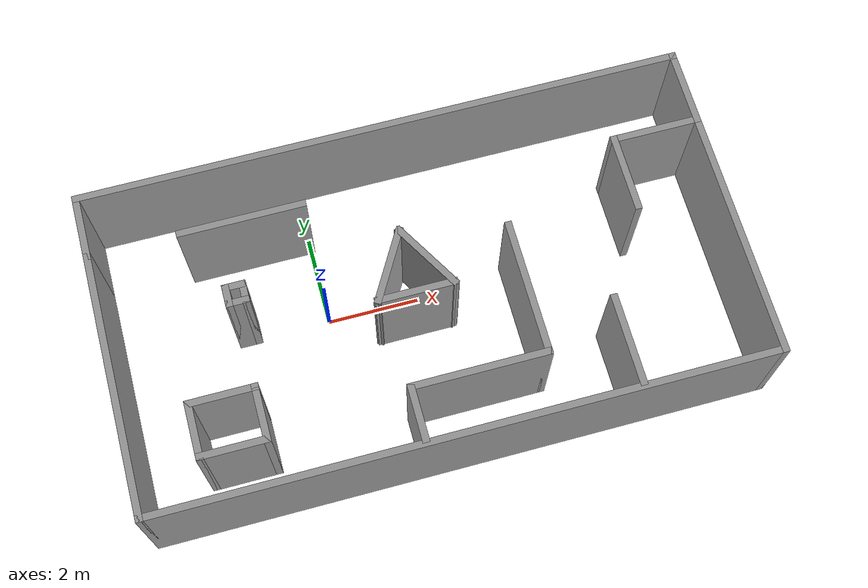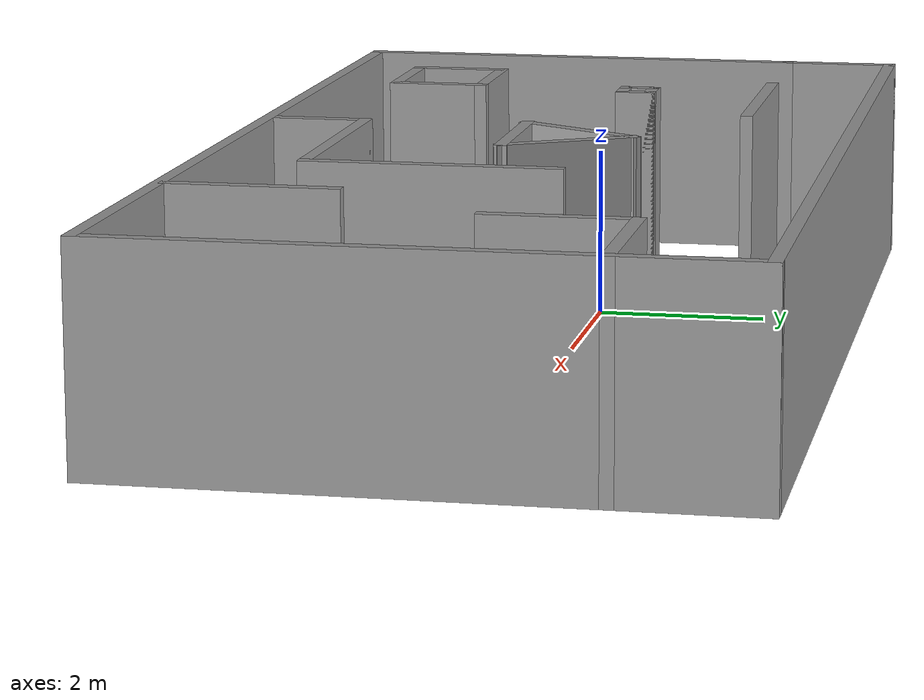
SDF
<?xml version='1.0'?>
<sdf version='1.7'>
  <model name='Untitled'>
    <pose>2.02003 -0.365294 0 0 -0 0</pose>
    <link name='Wall_10'>
      <collision name='Wall_10_Collision'>
        <geometry>
          <box>
            <size>13.25 0.15 2.5</size>
          </box>
        </geometry>
        <pose>0 0 1.25 0 -0 0</pose>
      </collision>
      <visual name='Wall_10_Visual'>
        <pose>0 0 1.25 0 -0 0</pose>
        <geometry>
          <box>
            <size>13.25 0.15 2.5</size>
          </box>
        </geometry>
        <material>
          <script>
            <uri>file://media/materials/scripts/gazebo.material</uri>
            <name>Gazebo/Grey</name>
          </script>
          <ambient>1 1 1 1</ambient>
        </material>
        <meta>
          <layer>0</layer>
        </meta>
      </visual>
      <pose>-0 3.475 0 0 -0 0</pose>
    </link>
    <link name='Wall_11'>
      <collision name='Wall_11_Collision'>
        <geometry>
          <box>
            <size>1.75 0.15 2.5</size>
          </box>
        </geometry>
        <pose>0 0 1.25 0 -0 0</pose>
      </collision>
      <visual name='Wall_11_Visual'>
        <pose>0 0 1.25 0 -0 0</pose>
        <geometry>
          <box>
            <size>1.75 0.15 2.5</size>
          </box>
        </geometry>
        <material>
          <script>
            <uri>file://media/materials/scripts/gazebo.material</uri>
            <name>Gazebo/Grey</name>
          </script>
          <ambient>1 1 1 1</ambient>
        </material>
        <meta>
          <layer>0</layer>
        </meta>
      </visual>
      <pose>6.55 2.675 0 0 -0 -1.5708</pose>
    </link>
    <link name='Wall_12'>
      <collision name='Wall_12_Collision'>
        <geometry>
          <box>
            <size>2 0.15 2.5</size>
          </box>
        </geometry>
        <pose>0 0 1.25 0 -0 0</pose>
      </collision>
      <visual name='Wall_12_Visual'>
        <pose>0 0 1.25 0 -0 0</pose>
        <geometry>
          <box>
            <size>2 0.15 2.5</size>
          </box>
        </geometry>
        <material>
          <script>
            <uri>file://media/materials/scripts/gazebo.material</uri>
            <name>Gazebo/Grey</name>
          </script>
          <ambient>1 1 1 1</ambient>
        </material>
        <meta>
          <layer>0</layer>
        </meta>
      </visual>
      <pose>5.625 1.875 0 0 -0 3.14159</pose>
    </link>
    <link name='Wall_13'>
      <collision name='Wall_13_Collision'>
        <geometry>
          <box>
            <size>1.75 0.15 2.5</size>
          </box>
        </geometry>
        <pose>0 0 1.25 0 -0 0</pose>
      </collision>
      <visual name='Wall_13_Visual'>
        <pose>0 0 1.25 0 -0 0</pose>
        <geometry>
          <box>
            <size>1.75 0.15 2.5</size>
          </box>
        </geometry>
        <material>
          <script>
            <uri>file://media/materials/scripts/gazebo.material</uri>
            <name>Gazebo/Grey</name>
          </script>
          <ambient>1 1 1 1</ambient>
        </material>
        <meta>
          <layer>0</layer>
        </meta>
      </visual>
      <pose>4.7 1.075 0 0 -0 -1.5708</pose>
    </link>
    <link name='Wall_15'>
      <collision name='Wall_15_Collision'>
        <geometry>
          <box>
            <size>1.75 0.15 2.5</size>
          </box>
        </geometry>
        <pose>0 0 1.25 0 -0 0</pose>
      </collision>
      <visual name='Wall_15_Visual'>
        <pose>0 0 1.25 0 -0 0</pose>
        <geometry>
          <box>
            <size>1.75 0.15 2.5</size>
          </box>
        </geometry>
        <material>
          <script>
            <uri>file://media/materials/scripts/gazebo.material</uri>
            <name>Gazebo/Grey</name>
          </script>
          <ambient>1 1 1 1</ambient>
        </material>
        <meta>
          <layer>0</layer>
        </meta>
      </visual>
      <pose>-0.630478 0.336992 0 0 -0 -2.0944</pose>
    </link>
    <link name='Wall_16'>
      <collision name='Wall_16_Collision'>
        <geometry>
          <box>
            <size>1.75 0.15 2.5</size>
          </box>
        </geometry>
        <pose>0 0 1.25 0 -0 0</pose>
      </collision>
      <visual name='Wall_16_Visual'>
        <pose>0 0 1.25 0 -0 0</pose>
        <geometry>
          <box>
            <size>1.75 0.15 2.5</size>
          </box>
        </geometry>
        <material>
          <script>
            <uri>file://media/materials/scripts/gazebo.material</uri>
            <name>Gazebo/Grey</name>
          </script>
          <ambient>1 1 1 1</ambient>
        </material>
        <meta>
          <layer>0</layer>
        </meta>
      </visual>
      <pose>-0.230478 -0.355829 0 0 -0 0</pose>
    </link>
    <link name='Wall_17'>
      <collision name='Wall_17_Collision'>
        <geometry>
          <box>
            <size>1.75 0.15 2.5</size>
          </box>
        </geometry>
        <pose>0 0 1.25 0 -0 0</pose>
      </collision>
      <visual name='Wall_17_Visual'>
        <pose>0 0 1.25 0 -0 0</pose>
        <geometry>
          <box>
            <size>1.75 0.15 2.5</size>
          </box>
        </geometry>
        <material>
          <script>
            <uri>file://media/materials/scripts/gazebo.material</uri>
            <name>Gazebo/Grey</name>
          </script>
          <ambient>1 1 1 1</ambient>
        </material>
        <meta>
          <layer>0</layer>
        </meta>
      </visual>
      <pose>0.169522 0.336992 0 0 -0 2.0944</pose>
    </link>
    <link name='Wall_19'>
      <collision name='Wall_19_Collision'>
        <geometry>
          <box>
            <size>1.25 0.15 2.5</size>
          </box>
        </geometry>
        <pose>0 0 1.25 0 -0 0</pose>
      </collision>
      <visual name='Wall_19_Visual'>
        <pose>0 0 1.25 0 -0 0</pose>
        <geometry>
          <box>
            <size>1.25 0.15 2.5</size>
          </box>
        </geometry>
        <material>
          <script>
            <uri>file://media/materials/scripts/gazebo.material</uri>
            <name>Gazebo/Grey</name>
          </script>
          <ambient>1 1 1 1</ambient>
        </material>
        <meta>
          <layer>0</layer>
        </meta>
      </visual>
      <pose>-5.18985 -2.03955 0 0 -0 -1.5708</pose>
    </link>
    <link name='Wall_20'>
      <collision name='Wall_20_Collision'>
        <geometry>
          <box>
            <size>1.5 0.15 2.5</size>
          </box>
        </geometry>
        <pose>0 0 1.25 0 -0 0</pose>
      </collision>
      <visual name='Wall_20_Visual'>
        <pose>0 0 1.25 0 -0 0</pose>
        <geometry>
          <box>
            <size>1.5 0.15 2.5</size>
          </box>
        </geometry>
        <material>
          <script>
            <uri>file://media/materials/scripts/gazebo.material</uri>
            <name>Gazebo/Grey</name>
          </script>
          <ambient>1 1 1 1</ambient>
        </material>
        <meta>
          <layer>0</layer>
        </meta>
      </visual>
      <pose>-4.51485 -2.58955 0 0 -0 0</pose>
    </link>
    <link name='Wall_21'>
      <collision name='Wall_21_Collision'>
        <geometry>
          <box>
            <size>1.25 0.15 2.5</size>
          </box>
        </geometry>
        <pose>0 0 1.25 0 -0 0</pose>
      </collision>
      <visual name='Wall_21_Visual'>
        <pose>0 0 1.25 0 -0 0</pose>
        <geometry>
          <box>
            <size>1.25 0.15 2.5</size>
          </box>
        </geometry>
        <material>
          <script>
            <uri>file://media/materials/scripts/gazebo.material</uri>
            <name>Gazebo/Grey</name>
          </script>
          <ambient>1 1 1 1</ambient>
        </material>
        <meta>
          <layer>0</layer>
        </meta>
      </visual>
      <pose>-3.83985 -2.03955 0 0 -0 1.5708</pose>
    </link>
    <link name='Wall_22'>
      <collision name='Wall_22_Collision'>
        <geometry>
          <box>
            <size>1.5 0.15 2.5</size>
          </box>
        </geometry>
        <pose>0 0 1.25 0 -0 0</pose>
      </collision>
      <visual name='Wall_22_Visual'>
        <pose>0 0 1.25 0 -0 0</pose>
        <geometry>
          <box>
            <size>1.5 0.15 2.5</size>
          </box>
        </geometry>
        <material>
          <script>
            <uri>file://media/materials/scripts/gazebo.material</uri>
            <name>Gazebo/Grey</name>
          </script>
          <ambient>1 1 1 1</ambient>
        </material>
        <meta>
          <layer>0</layer>
        </meta>
      </visual>
      <pose>-4.51485 -1.48955 0 0 -0 3.14159</pose>
    </link>
    <link name='Wall_24'>
      <collision name='Wall_24_Collision'>
        <geometry>
          <box>
            <size>2 0.15 2.5</size>
          </box>
        </geometry>
        <pose>0 0 1.25 0 -0 0</pose>
      </collision>
      <visual name='Wall_24_Visual'>
        <pose>0 0 1.25 0 -0 0</pose>
        <geometry>
          <box>
            <size>2 0.15 2.5</size>
          </box>
        </geometry>
        <material>
          <script>
            <uri>file://media/materials/scripts/gazebo.material</uri>
            <name>Gazebo/Grey</name>
          </script>
          <ambient>1 1 1 1</ambient>
        </material>
        <meta>
          <layer>0</layer>
        </meta>
      </visual>
      <pose>3.59816 -2.46895 0 0 -0 1.5708</pose>
    </link>
    <link name='Wall_26'>
      <collision name='Wall_26_Collision'>
        <geometry>
          <box>
            <size>2.75 0.15 2.5</size>
          </box>
        </geometry>
        <pose>0 0 1.25 0 -0 0</pose>
      </collision>
      <visual name='Wall_26_Visual'>
        <pose>0 0 1.25 0 -0 0</pose>
        <geometry>
          <box>
            <size>2.75 0.15 2.5</size>
          </box>
        </geometry>
        <material>
          <script>
            <uri>file://media/materials/scripts/gazebo.material</uri>
            <name>Gazebo/Grey</name>
          </script>
          <ambient>1 1 1 1</ambient>
        </material>
        <meta>
          <layer>0</layer>
        </meta>
      </visual>
      <pose>-3.31456 2.14071 0 0 -0 0</pose>
    </link>
    <link name='Wall_28'>
      <collision name='Wall_28_Collision'>
        <geometry>
          <box>
            <size>1.25 0.15 2.5</size>
          </box>
        </geometry>
        <pose>0 0 1.25 0 -0 0</pose>
      </collision>
      <visual name='Wall_28_Visual'>
        <pose>0 0 1.25 0 -0 0</pose>
        <geometry>
          <box>
            <size>1.25 0.15 2.5</size>
          </box>
        </geometry>
        <material>
          <script>
            <uri>file://media/materials/scripts/gazebo.material</uri>
            <name>Gazebo/Grey</name>
          </script>
          <ambient>1 1 1 1</ambient>
        </material>
        <meta>
          <layer>0</layer>
        </meta>
      </visual>
      <pose>-0.865278 -2.84395 0 0 -0 1.5708</pose>
    </link>
    <link name='Wall_29'>
      <collision name='Wall_29_Collision'>
        <geometry>
          <box>
            <size>3 0.15 2.5</size>
          </box>
        </geometry>
        <pose>0 0 1.25 0 -0 0</pose>
      </collision>
      <visual name='Wall_29_Visual'>
        <pose>0 0 1.25 0 -0 0</pose>
        <geometry>
          <box>
            <size>3 0.15 2.5</size>
          </box>
        </geometry>
        <material>
          <script>
            <uri>file://media/materials/scripts/gazebo.material</uri>
            <name>Gazebo/Grey</name>
          </script>
          <ambient>1 1 1 1</ambient>
        </material>
        <meta>
          <layer>0</layer>
        </meta>
      </visual>
      <pose>0.559722 -2.29395 0 0 -0 0</pose>
    </link>
    <link name='Wall_30'>
      <collision name='Wall_30_Collision'>
        <geometry>
          <box>
            <size>3 0.15 2.5</size>
          </box>
        </geometry>
        <pose>0 0 1.25 0 -0 0</pose>
      </collision>
      <visual name='Wall_30_Visual'>
        <pose>0 0 1.25 0 -0 0</pose>
        <geometry>
          <box>
            <size>3 0.15 2.5</size>
          </box>
        </geometry>
        <material>
          <script>
            <uri>file://media/materials/scripts/gazebo.material</uri>
            <name>Gazebo/Grey</name>
          </script>
          <ambient>1 1 1 1</ambient>
        </material>
        <meta>
          <layer>0</layer>
        </meta>
      </visual>
      <pose>1.98472 -0.86895 0 0 -0 1.5708</pose>
    </link>
    <link name='Wall_32'>
      <collision name='Wall_32_Collision'>
        <geometry>
          <box>
            <size>0.5 0.15 2.5</size>
          </box>
        </geometry>
        <pose>0 0 1.25 0 -0 0</pose>
      </collision>
      <visual name='Wall_32_Visual'>
        <pose>0 0 1.25 0 -0 0</pose>
        <geometry>
          <box>
            <size>0.5 0.15 2.5</size>
          </box>
        </geometry>
        <material>
          <script>
            <uri>file://media/materials/scripts/gazebo.material</uri>
            <name>Gazebo/Grey</name>
          </script>
          <ambient>1 1 1 1</ambient>
        </material>
        <meta>
          <layer>0</layer>
        </meta>
      </visual>
      <pose>-3.95993 0.537412 0 0 -0 -1.5708</pose>
    </link>
    <link name='Wall_33'>
      <collision name='Wall_33_Collision'>
        <geometry>
          <box>
            <size>0.5 0.15 2.5</size>
          </box>
        </geometry>
        <pose>0 0 1.25 0 -0 0</pose>
      </collision>
      <visual name='Wall_33_Visual'>
        <pose>0 0 1.25 0 -0 0</pose>
        <geometry>
          <box>
            <size>0.5 0.15 2.5</size>
          </box>
        </geometry>
        <material>
          <script>
            <uri>file://media/materials/scripts/gazebo.material</uri>
            <name>Gazebo/Grey</name>
          </script>
          <ambient>1 1 1 1</ambient>
        </material>
        <meta>
          <layer>0</layer>
        </meta>
      </visual>
      <pose>-3.78493 0.362412 0 0 -0 0</pose>
    </link>
    <link name='Wall_34'>
      <collision name='Wall_34_Collision'>
        <geometry>
          <box>
            <size>0.5 0.15 2.5</size>
          </box>
        </geometry>
        <pose>0 0 1.25 0 -0 0</pose>
      </collision>
      <visual name='Wall_34_Visual'>
        <pose>0 0 1.25 0 -0 0</pose>
        <geometry>
          <box>
            <size>0.5 0.15 2.5</size>
          </box>
        </geometry>
        <material>
          <script>
            <uri>file://media/materials/scripts/gazebo.material</uri>
            <name>Gazebo/Grey</name>
          </script>
          <ambient>1 1 1 1</ambient>
        </material>
        <meta>
          <layer>0</layer>
        </meta>
      </visual>
      <pose>-3.60993 0.537412 0 0 -0 1.5708</pose>
    </link>
    <link name='Wall_35'>
      <collision name='Wall_35_Collision'>
        <geometry>
          <box>
            <size>0.5 0.15 2.5</size>
          </box>
        </geometry>
        <pose>0 0 1.25 0 -0 0</pose>
      </collision>
      <visual name='Wall_35_Visual'>
        <pose>0 0 1.25 0 -0 0</pose>
        <geometry>
          <box>
            <size>0.5 0.15 2.5</size>
          </box>
        </geometry>
        <material>
          <script>
            <uri>file://media/materials/scripts/gazebo.material</uri>
            <name>Gazebo/Grey</name>
          </script>
          <ambient>1 1 1 1</ambient>
        </material>
        <meta>
          <layer>0</layer>
        </meta>
      </visual>
      <pose>-3.78493 0.712412 0 0 -0 3.14159</pose>
    </link>
    <link name='Wall_5'>
      <collision name='Wall_5_Collision'>
        <geometry>
          <box>
            <size>5.75 0.15 2.5</size>
          </box>
        </geometry>
        <pose>0 0 1.25 0 -0 0</pose>
      </collision>
      <visual name='Wall_5_Visual'>
        <pose>0 0 1.25 0 -0 0</pose>
        <geometry>
          <box>
            <size>5.75 0.15 2.5</size>
          </box>
        </geometry>
        <material>
          <script>
            <uri>file://media/materials/scripts/gazebo.material</uri>
            <name>Gazebo/Grey</name>
          </script>
          <ambient>1 1 1 1</ambient>
        </material>
        <meta>
          <layer>0</layer>
        </meta>
      </visual>
      <pose>-6.55 -0.675 0 0 -0 -1.5708</pose>
    </link>
    <link name='Wall_6'>
      <collision name='Wall_6_Collision'>
        <geometry>
          <box>
            <size>13.25 0.15 2.5</size>
          </box>
        </geometry>
        <pose>0 0 1.25 0 -0 0</pose>
      </collision>
      <visual name='Wall_6_Visual'>
        <pose>0 0 1.25 0 -0 0</pose>
        <geometry>
          <box>
            <size>13.25 0.15 2.5</size>
          </box>
        </geometry>
        <material>
          <script>
            <uri>file://media/materials/scripts/gazebo.material</uri>
            <name>Gazebo/Grey</name>
          </script>
          <ambient>1 1 1 1</ambient>
        </material>
        <meta>
          <layer>0</layer>
        </meta>
      </visual>
      <pose>-0 -3.475 0 0 -0 0</pose>
    </link>
    <link name='Wall_7'>
      <collision name='Wall_7_Collision'>
        <geometry>
          <box>
            <size>5.5 0.15 2.5</size>
          </box>
        </geometry>
        <pose>0 0 1.25 0 -0 0</pose>
      </collision>
      <visual name='Wall_7_Visual'>
        <pose>0 0 1.25 0 -0 0</pose>
        <geometry>
          <box>
            <size>5.5 0.15 2.5</size>
          </box>
        </geometry>
        <material>
          <script>
            <uri>file://media/materials/scripts/gazebo.material</uri>
            <name>Gazebo/Grey</name>
          </script>
          <ambient>1 1 1 1</ambient>
        </material>
        <meta>
          <layer>0</layer>
        </meta>
      </visual>
      <pose>6.55 -0.8 0 0 -0 1.5708</pose>
    </link>
    <link name='Wall_9'>
      <collision name='Wall_9_Collision'>
        <geometry>
          <box>
            <size>1.5 0.15 2.5</size>
          </box>
        </geometry>
        <pose>0 0 1.25 0 -0 0</pose>
      </collision>
      <visual name='Wall_9_Visual'>
        <pose>0 0 1.25 0 -0 0</pose>
        <geometry>
          <box>
            <size>1.5 0.15 2.5</size>
          </box>
        </geometry>
        <material>
          <script>
            <uri>file://media/materials/scripts/gazebo.material</uri>
            <name>Gazebo/Grey</name>
          </script>
          <ambient>1 1 1 1</ambient>
        </material>
        <meta>
          <layer>0</layer>
        </meta>
      </visual>
      <pose>-6.55 2.8 0 0 -0 1.5708</pose>
    </link>
    <static>1</static>
  </model>
</sdf>
